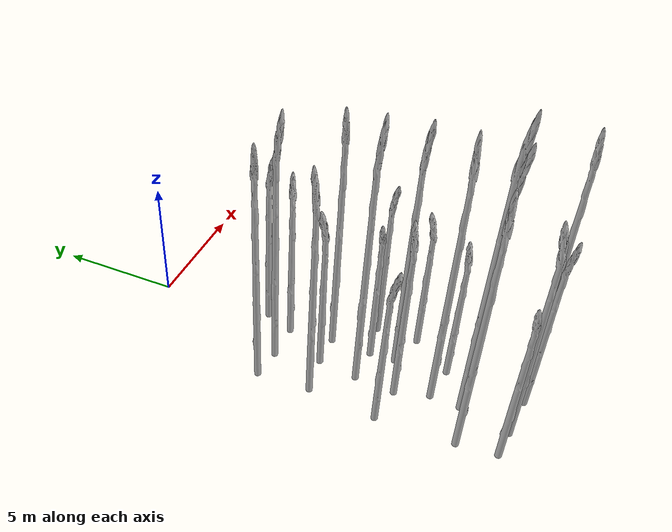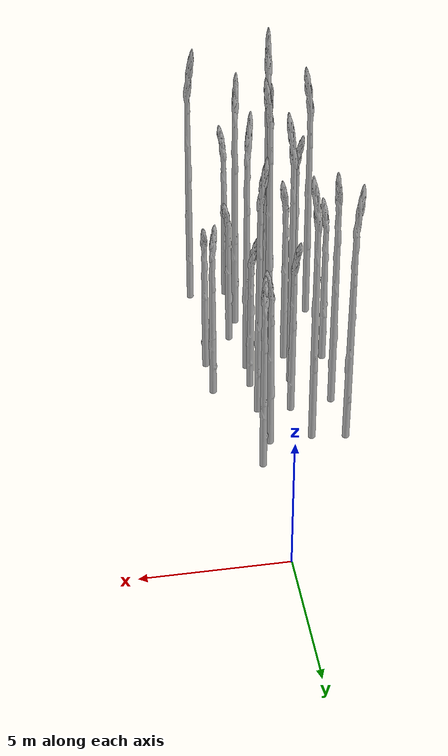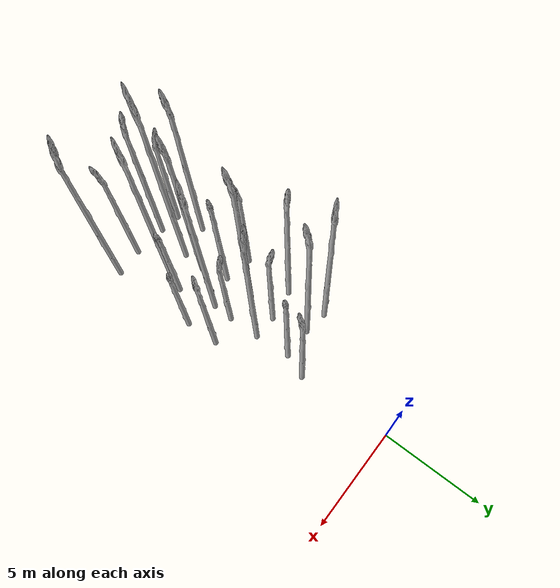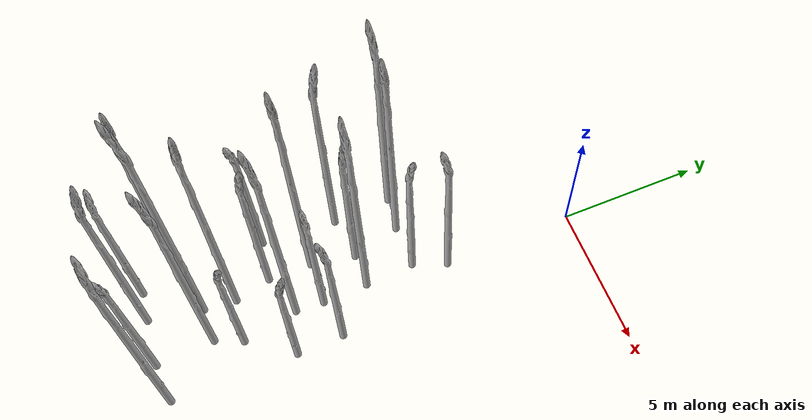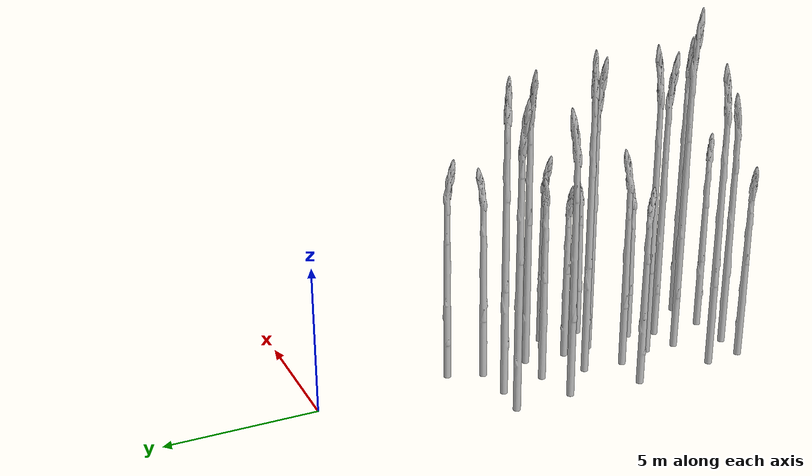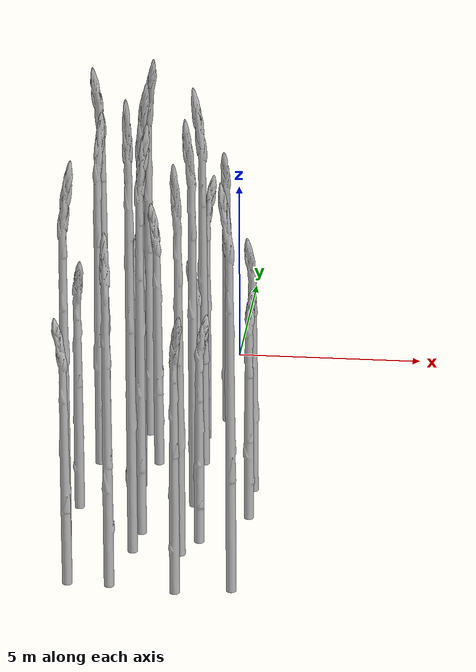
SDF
<sdf version="1.6">
 <world name="default">
  <model name="asparagus_1">
   <pose>-2.90679 -14.8739 0 0 -0 2.77602</pose>
   <static>1</static>
   <link name="asparagus_1">
    <visual name="visual">
     <geometry>
      <mesh><uri>model://Asparagus/meshes/asparagus.obj</uri><scale>0.3 0.3 0.345911</scale></mesh>
     </geometry>
    </visual>
    <collision name="collision">
     <geometry>
      <mesh><uri>model://Asparagus/meshes/asparagus.obj</uri><scale>0.3 0.3 0.345911</scale></mesh>
     </geometry>
    </collision>
   </link>
  </model>
  <model name="asparagus_4">
   <pose>-2.95804 -13.4201 0 0 -0 0.200583</pose>
   <static>1</static>
   <link name="asparagus_4">
    <visual name="visual">
     <geometry>
      <mesh><uri>model://Asparagus/meshes/asparagus.obj</uri><scale>0.3 0.3 0.517181</scale></mesh>
     </geometry>
    </visual>
    <collision name="collision">
     <geometry>
      <mesh><uri>model://Asparagus/meshes/asparagus.obj</uri><scale>0.3 0.3 0.517181</scale></mesh>
     </geometry>
    </collision>
   </link>
  </model>
  <model name="asparagus_10">
   <pose>-3.06272 -10.5367 0 0 -0 -1.03703</pose>
   <static>1</static>
   <link name="asparagus_10">
    <visual name="visual">
     <geometry>
      <mesh><uri>model://Asparagus/meshes/asparagus.obj</uri><scale>0.3 0.3 0.337028</scale></mesh>
     </geometry>
    </visual>
    <collision name="collision">
     <geometry>
      <mesh><uri>model://Asparagus/meshes/asparagus.obj</uri><scale>0.3 0.3 0.337028</scale></mesh>
     </geometry>
    </collision>
   </link>
  </model>
  <model name="asparagus_16">
   <pose>-2.85009 -7.74077 0 0 -0 1.05702</pose>
   <static>1</static>
   <link name="asparagus_16">
    <visual name="visual">
     <geometry>
      <mesh><uri>model://Asparagus/meshes/asparagus.obj</uri><scale>0.3 0.3 0.474499</scale></mesh>
     </geometry>
    </visual>
    <collision name="collision">
     <geometry>
      <mesh><uri>model://Asparagus/meshes/asparagus.obj</uri><scale>0.3 0.3 0.474499</scale></mesh>
     </geometry>
    </collision>
   </link>
  </model>
  <model name="asparagus_19">
   <pose>-3.07164 -5.75902 0 0 -0 -2.6461</pose>
   <static>1</static>
   <link name="asparagus_19">
    <visual name="visual">
     <geometry>
      <mesh><uri>model://Asparagus/meshes/asparagus.obj</uri><scale>0.3 0.3 0.500914</scale></mesh>
     </geometry>
    </visual>
    <collision name="collision">
     <geometry>
      <mesh><uri>model://Asparagus/meshes/asparagus.obj</uri><scale>0.3 0.3 0.500914</scale></mesh>
     </geometry>
    </collision>
   </link>
  </model>
  <model name="asparagus_61">
   <pose>-1.78048 -14.9473 0 0 -0 1.76297</pose>
   <static>1</static>
   <link name="asparagus_61">
    <visual name="visual">
     <geometry>
      <mesh><uri>model://Asparagus/meshes/asparagus.obj</uri><scale>0.3 0.3 0.4556</scale></mesh>
     </geometry>
    </visual>
    <collision name="collision">
     <geometry>
      <mesh><uri>model://Asparagus/meshes/asparagus.obj</uri><scale>0.3 0.3 0.4556</scale></mesh>
     </geometry>
    </collision>
   </link>
  </model>
  <model name="asparagus_64">
   <pose>-1.41383 -13.2106 0 0 -0 -1.61654</pose>
   <static>1</static>
   <link name="asparagus_64">
    <visual name="visual">
     <geometry>
      <mesh><uri>model://Asparagus/meshes/asparagus.obj</uri><scale>0.3 0.3 0.595208</scale></mesh>
     </geometry>
    </visual>
    <collision name="collision">
     <geometry>
      <mesh><uri>model://Asparagus/meshes/asparagus.obj</uri><scale>0.3 0.3 0.595208</scale></mesh>
     </geometry>
    </collision>
   </link>
  </model>
  <model name="asparagus_67">
   <pose>-1.23553 -11.9688 0 0 -0 0.382735</pose>
   <static>1</static>
   <link name="asparagus_67">
    <visual name="visual">
     <geometry>
      <mesh><uri>model://Asparagus/meshes/asparagus.obj</uri><scale>0.3 0.3 0.539532</scale></mesh>
     </geometry>
    </visual>
    <collision name="collision">
     <geometry>
      <mesh><uri>model://Asparagus/meshes/asparagus.obj</uri><scale>0.3 0.3 0.539532</scale></mesh>
     </geometry>
    </collision>
   </link>
  </model>
  <model name="asparagus_70">
   <pose>-1.60423 -10.652 0 0 -0 0.710482</pose>
   <static>1</static>
   <link name="asparagus_70">
    <visual name="visual">
     <geometry>
      <mesh><uri>model://Asparagus/meshes/asparagus.obj</uri><scale>0.3 0.3 0.38083</scale></mesh>
     </geometry>
    </visual>
    <collision name="collision">
     <geometry>
      <mesh><uri>model://Asparagus/meshes/asparagus.obj</uri><scale>0.3 0.3 0.38083</scale></mesh>
     </geometry>
    </collision>
   </link>
  </model>
  <model name="asparagus_73">
   <pose>-1.55245 -9.20074 0 0 -0 -0.396465</pose>
   <static>1</static>
   <link name="asparagus_73">
    <visual name="visual">
     <geometry>
      <mesh><uri>model://Asparagus/meshes/asparagus.obj</uri><scale>0.3 0.3 0.542987</scale></mesh>
     </geometry>
    </visual>
    <collision name="collision">
     <geometry>
      <mesh><uri>model://Asparagus/meshes/asparagus.obj</uri><scale>0.3 0.3 0.542987</scale></mesh>
     </geometry>
    </collision>
   </link>
  </model>
  <model name="asparagus_76">
   <pose>-1.42382 -7.54586 0 0 -0 2.42288</pose>
   <static>1</static>
   <link name="asparagus_76">
    <visual name="visual">
     <geometry>
      <mesh><uri>model://Asparagus/meshes/asparagus.obj</uri><scale>0.3 0.3 0.353623</scale></mesh>
     </geometry>
    </visual>
    <collision name="collision">
     <geometry>
      <mesh><uri>model://Asparagus/meshes/asparagus.obj</uri><scale>0.3 0.3 0.353623</scale></mesh>
     </geometry>
    </collision>
   </link>
  </model>
  <model name="asparagus_79">
   <pose>-1.74433 -5.93451 0 0 -0 -0.598795</pose>
   <static>1</static>
   <link name="asparagus_79">
    <visual name="visual">
     <geometry>
      <mesh><uri>model://Asparagus/meshes/asparagus.obj</uri><scale>0.3 0.3 0.517471</scale></mesh>
     </geometry>
    </visual>
    <collision name="collision">
     <geometry>
      <mesh><uri>model://Asparagus/meshes/asparagus.obj</uri><scale>0.3 0.3 0.517471</scale></mesh>
     </geometry>
    </collision>
   </link>
  </model>
  <model name="asparagus_121">
   <pose>-0.059192 -15.2646 0 0 -0 -0.819335</pose>
   <static>1</static>
   <link name="asparagus_121">
    <visual name="visual">
     <geometry>
      <mesh><uri>model://Asparagus/meshes/asparagus.obj</uri><scale>0.3 0.3 0.364984</scale></mesh>
     </geometry>
    </visual>
    <collision name="collision">
     <geometry>
      <mesh><uri>model://Asparagus/meshes/asparagus.obj</uri><scale>0.3 0.3 0.364984</scale></mesh>
     </geometry>
    </collision>
   </link>
  </model>
  <model name="asparagus_124">
   <pose>-0.226463 -13.2141 0 0 -0 -1.88515</pose>
   <static>1</static>
   <link name="asparagus_124">
    <visual name="visual">
     <geometry>
      <mesh><uri>model://Asparagus/meshes/asparagus.obj</uri><scale>0.3 0.3 0.51671</scale></mesh>
     </geometry>
    </visual>
    <collision name="collision">
     <geometry>
      <mesh><uri>model://Asparagus/meshes/asparagus.obj</uri><scale>0.3 0.3 0.51671</scale></mesh>
     </geometry>
    </collision>
   </link>
  </model>
  <model name="asparagus_127">
   <pose>0.249831 -12.1558 0 0 -0 0.639049</pose>
   <static>1</static>
   <link name="asparagus_127">
    <visual name="visual">
     <geometry>
      <mesh><uri>model://Asparagus/meshes/asparagus.obj</uri><scale>0.3 0.3 0.301311</scale></mesh>
     </geometry>
    </visual>
    <collision name="collision">
     <geometry>
      <mesh><uri>model://Asparagus/meshes/asparagus.obj</uri><scale>0.3 0.3 0.301311</scale></mesh>
     </geometry>
    </collision>
   </link>
  </model>
  <model name="asparagus_130">
   <pose>-0.213976 -10.2836 0 0 -0 -2.20622</pose>
   <static>1</static>
   <link name="asparagus_130">
    <visual name="visual">
     <geometry>
      <mesh><uri>model://Asparagus/meshes/asparagus.obj</uri><scale>0.3 0.3 0.519515</scale></mesh>
     </geometry>
    </visual>
    <collision name="collision">
     <geometry>
      <mesh><uri>model://Asparagus/meshes/asparagus.obj</uri><scale>0.3 0.3 0.519515</scale></mesh>
     </geometry>
    </collision>
   </link>
  </model>
  <model name="asparagus_133">
   <pose>-0.224069 -9.21988 0 0 -0 -3.12175</pose>
   <static>1</static>
   <link name="asparagus_133">
    <visual name="visual">
     <geometry>
      <mesh><uri>model://Asparagus/meshes/asparagus.obj</uri><scale>0.3 0.3 0.314301</scale></mesh>
     </geometry>
    </visual>
    <collision name="collision">
     <geometry>
      <mesh><uri>model://Asparagus/meshes/asparagus.obj</uri><scale>0.3 0.3 0.314301</scale></mesh>
     </geometry>
    </collision>
   </link>
  </model>
  <model name="asparagus_136">
   <pose>-0.244057 -7.63205 0 0 -0 -3.00605</pose>
   <static>1</static>
   <link name="asparagus_136">
    <visual name="visual">
     <geometry>
      <mesh><uri>model://Asparagus/meshes/asparagus.obj</uri><scale>0.3 0.3 0.510751</scale></mesh>
     </geometry>
    </visual>
    <collision name="collision">
     <geometry>
      <mesh><uri>model://Asparagus/meshes/asparagus.obj</uri><scale>0.3 0.3 0.510751</scale></mesh>
     </geometry>
    </collision>
   </link>
  </model>
  <model name="asparagus_139">
   <pose>-0.22933 -5.83807 0 0 -0 0.504191</pose>
   <static>1</static>
   <link name="asparagus_139">
    <visual name="visual">
     <geometry>
      <mesh><uri>model://Asparagus/meshes/asparagus.obj</uri><scale>0.3 0.3 0.362055</scale></mesh>
     </geometry>
    </visual>
    <collision name="collision">
     <geometry>
      <mesh><uri>model://Asparagus/meshes/asparagus.obj</uri><scale>0.3 0.3 0.362055</scale></mesh>
     </geometry>
    </collision>
   </link>
  </model>
  <model name="asparagus_142">
   <pose>0.119295 -4.7872 0 0 -0 -1.74003</pose>
   <static>1</static>
   <link name="asparagus_142">
    <visual name="visual">
     <geometry>
      <mesh><uri>model://Asparagus/meshes/asparagus.obj</uri><scale>0.3 0.3 0.378268</scale></mesh>
     </geometry>
    </visual>
    <collision name="collision">
     <geometry>
      <mesh><uri>model://Asparagus/meshes/asparagus.obj</uri><scale>0.3 0.3 0.378268</scale></mesh>
     </geometry>
    </collision>
   </link>
  </model>
  <model name="asparagus_181">
   <pose>1.21034 -15.0558 0 0 -0 2.84538</pose>
   <static>1</static>
   <link name="asparagus_181">
    <visual name="visual">
     <geometry>
      <mesh><uri>model://Asparagus/meshes/asparagus.obj</uri><scale>0.3 0.3 0.52655</scale></mesh>
     </geometry>
    </visual>
    <collision name="collision">
     <geometry>
      <mesh><uri>model://Asparagus/meshes/asparagus.obj</uri><scale>0.3 0.3 0.52655</scale></mesh>
     </geometry>
    </collision>
   </link>
  </model>
  <model name="asparagus_190">
   <pose>1.32023 -10.5941 0 0 -0 1.3269</pose>
   <static>1</static>
   <link name="asparagus_190">
    <visual name="visual">
     <geometry>
      <mesh><uri>model://Asparagus/meshes/asparagus.obj</uri><scale>0.3 0.3 0.303372</scale></mesh>
     </geometry>
    </visual>
    <collision name="collision">
     <geometry>
      <mesh><uri>model://Asparagus/meshes/asparagus.obj</uri><scale>0.3 0.3 0.303372</scale></mesh>
     </geometry>
    </collision>
   </link>
  </model>
  <model name="asparagus_193">
   <pose>1.20895 -9.09033 0 0 -0 -2.14216</pose>
   <static>1</static>
   <link name="asparagus_193">
    <visual name="visual">
     <geometry>
      <mesh><uri>model://Asparagus/meshes/asparagus.obj</uri><scale>0.3 0.3 0.346487</scale></mesh>
     </geometry>
    </visual>
    <collision name="collision">
     <geometry>
      <mesh><uri>model://Asparagus/meshes/asparagus.obj</uri><scale>0.3 0.3 0.346487</scale></mesh>
     </geometry>
    </collision>
   </link>
  </model>
 </world>
</sdf>
